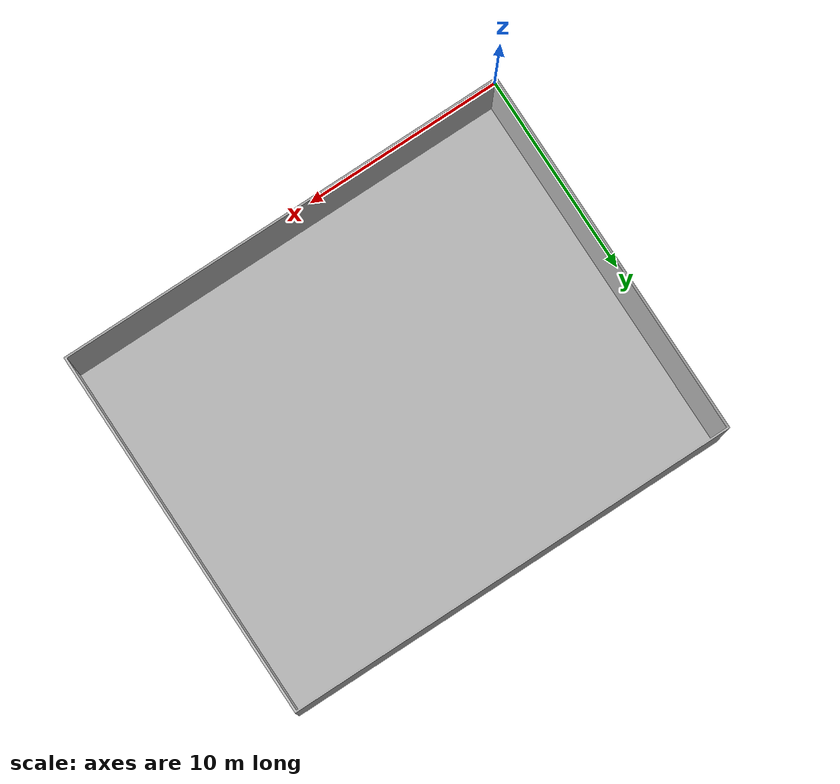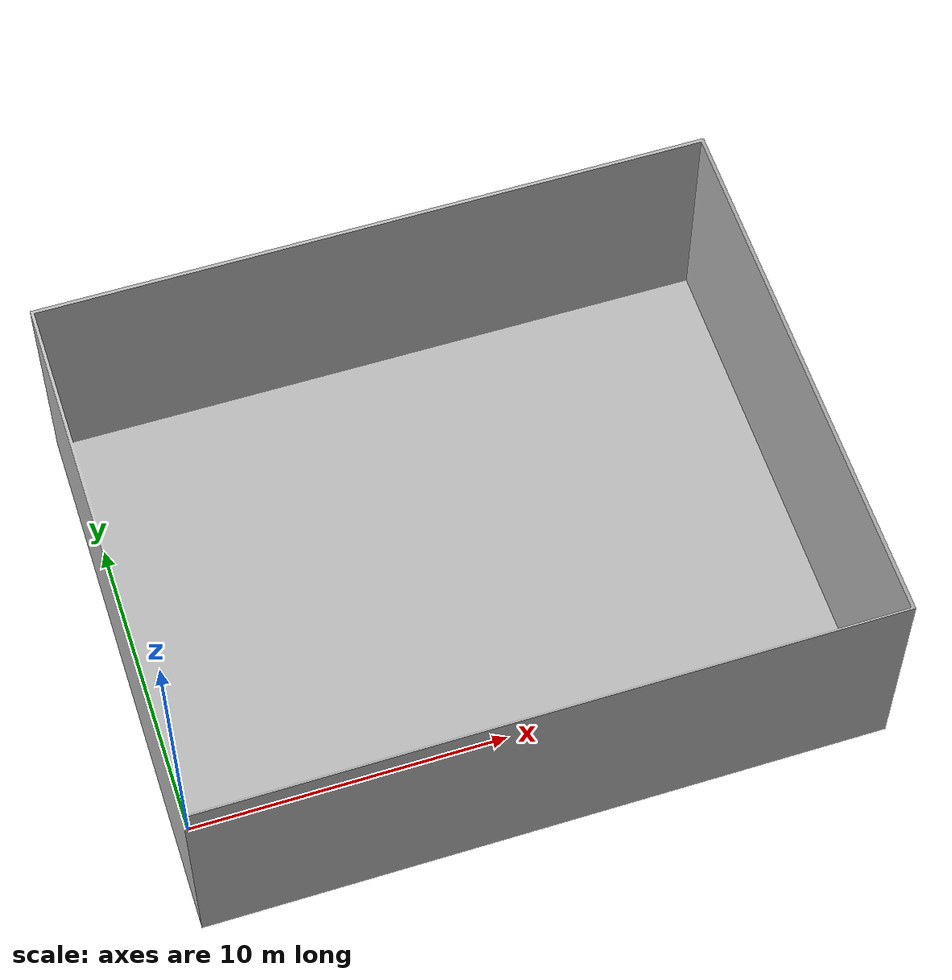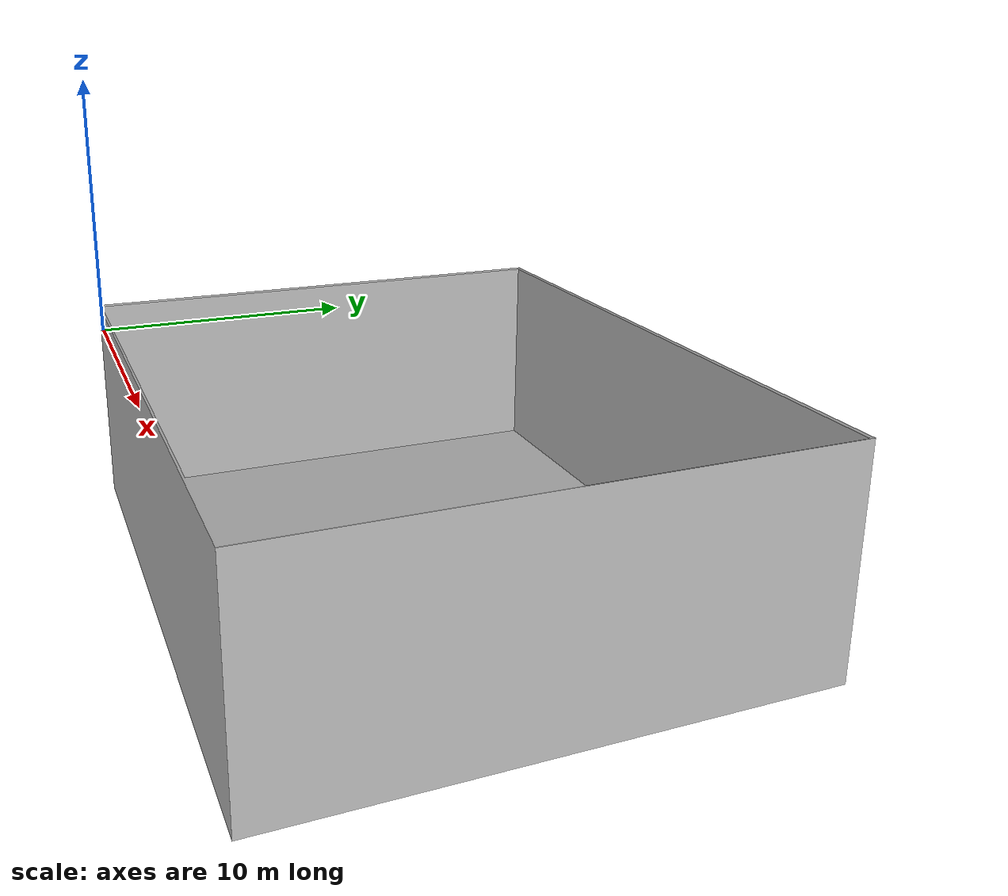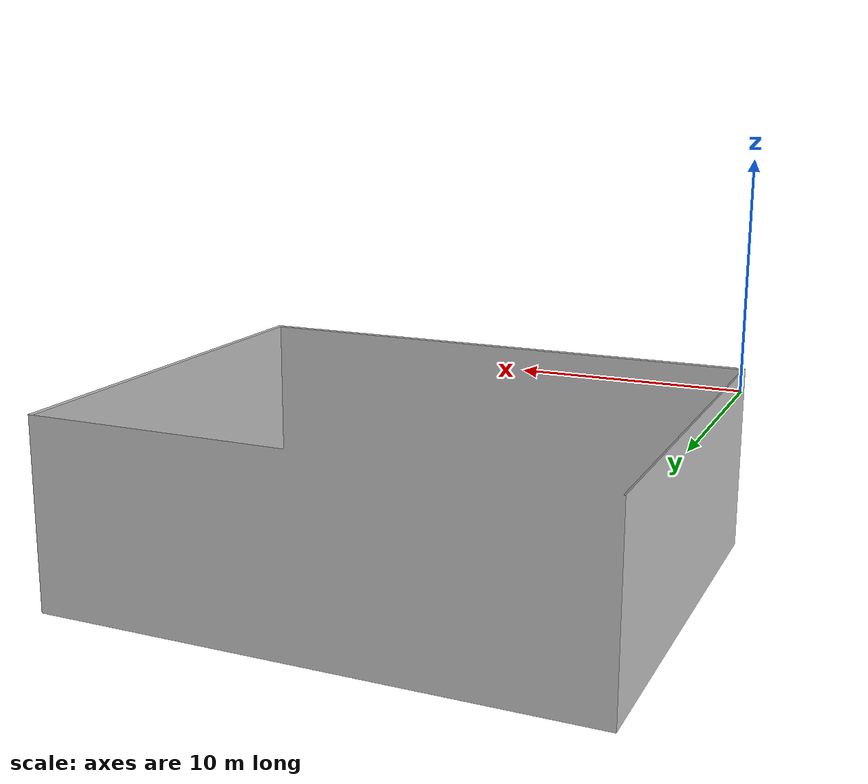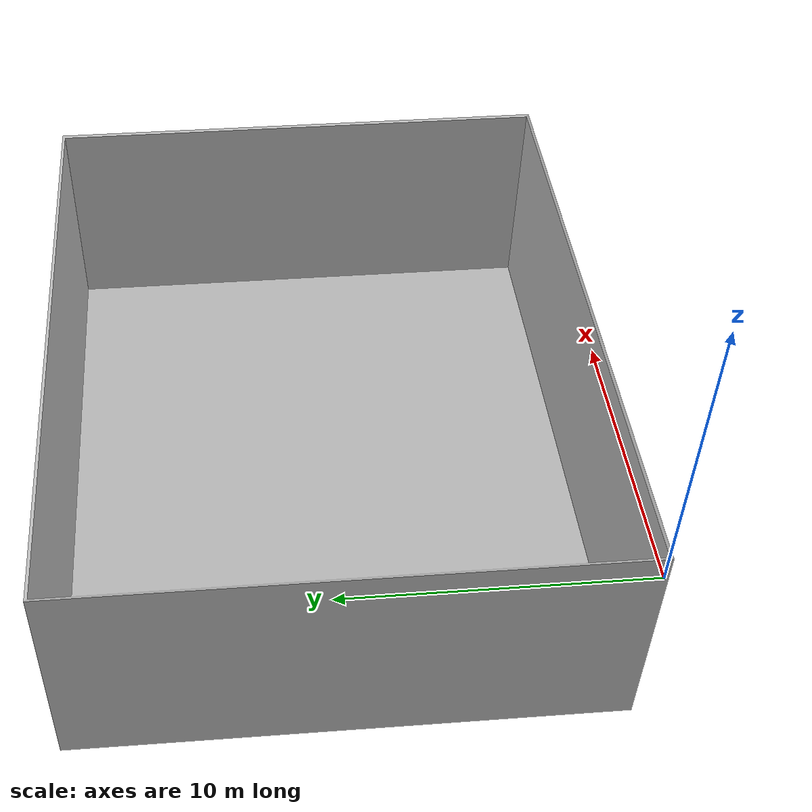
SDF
<?xml version="1.0" ?>
<sdf version="1.6">
    <world name="tank">
         <include>
            <name>tank_structure</name>
            <uri>model://tank</uri>
            <pose>0 0 1 0 0 0</pose>
        </include>
     </world>
</sdf>

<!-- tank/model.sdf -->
<sdf version="1.4">
    <model name="tank">
        <pose>0 0 0 0 0 0</pose>
        <static>true</static>
        <link name="tank_body">
            <visual name="visual">
                <geometry>
                    <mesh>
                        <uri>model://tank/visual.osgb</uri>
                    </mesh>
                </geometry>
            </visual>
            <collision name="collision">
                <geometry>
                    <mesh>
                        <uri>model://tank/collision.stl</uri>
                    </mesh>
                </geometry>
            </collision>
            <inertial>
                <pose>0 0 -1 0 0 0</pose>
                <inertia>
                    <ixx>0.0</ixx>
                    <ixy>0</ixy>
                    <ixz>0.0</ixz>
                    <iyy>0.0</iyy>
                    <iyz>0</iyz>
                    <izz>0.0</izz>
                </inertia>
                <mass>1.0</mass>
            </inertial>
        </link>
    </model>
</sdf>
